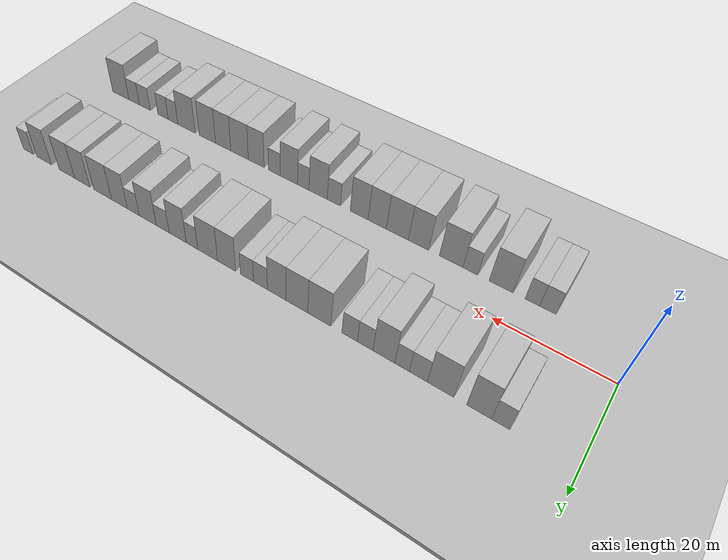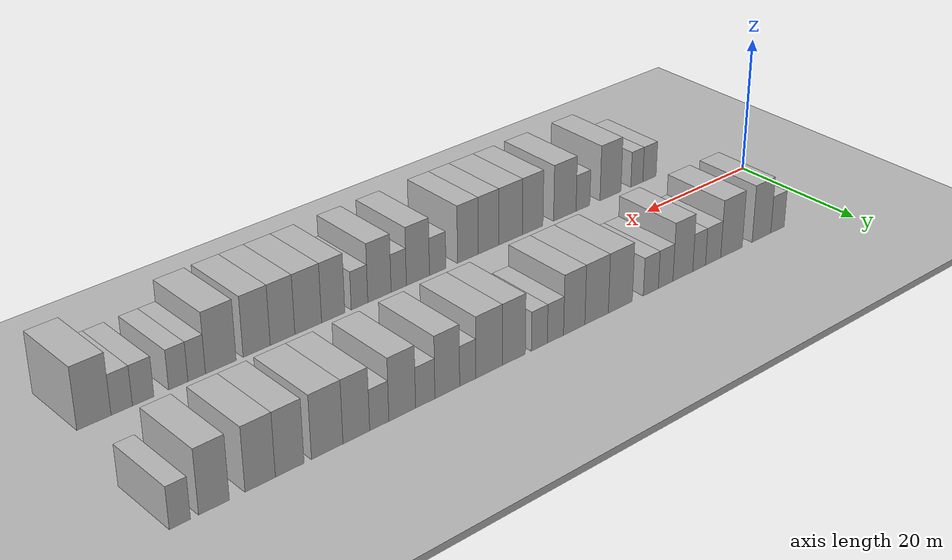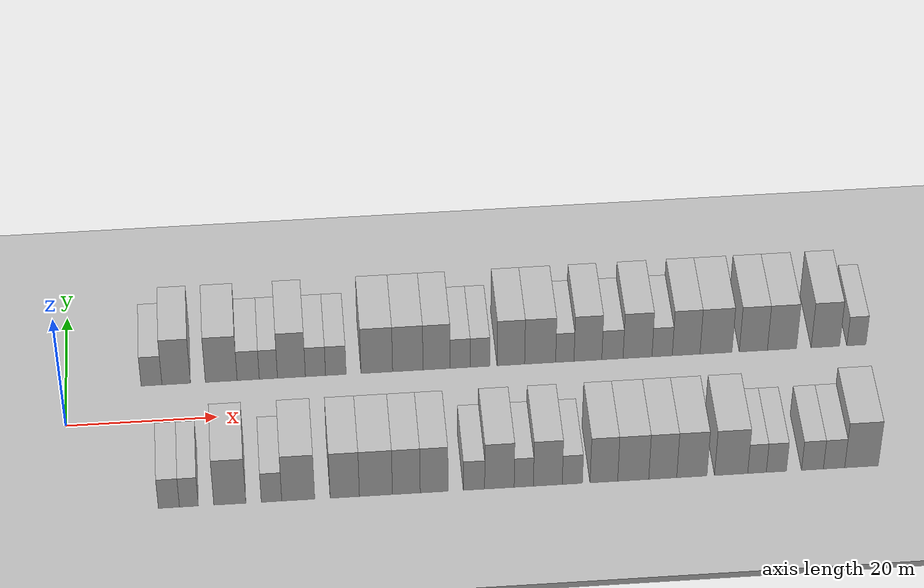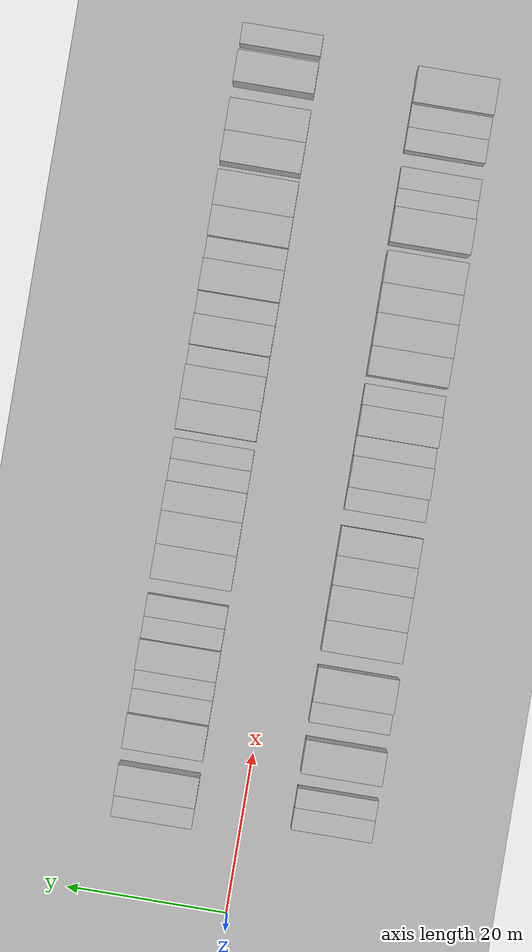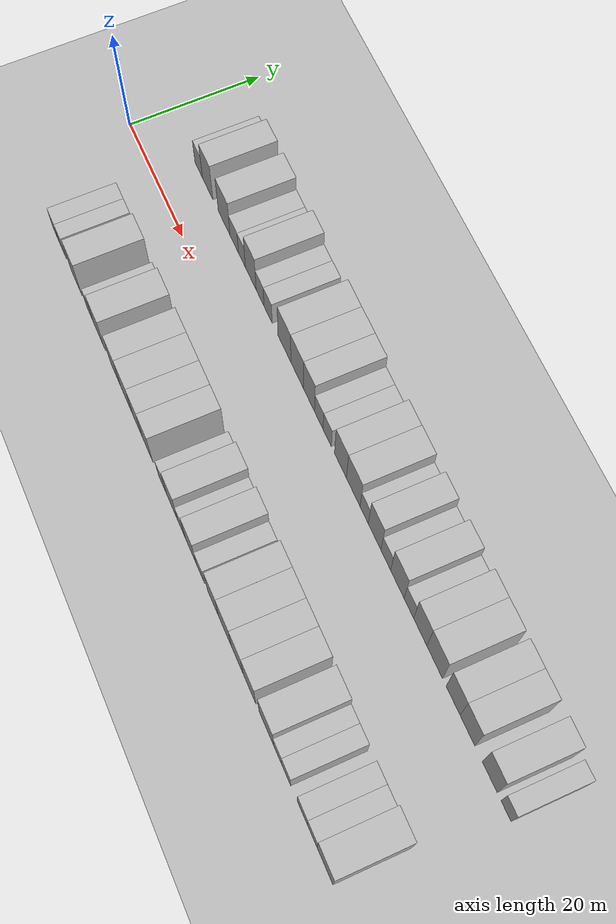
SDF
<sdf version="1.6">
 <world name="default">
  <include><name>ground_plane_1</name><uri>model://HANNAS_ground_plane</uri></include>
  <include>
   <name>ground_plane_2</name>
   <uri>model://HANNAS_ground_plane</uri>
   <pose>100 0 0  0 0 0</pose>
  </include>
  <model name="building_1">
   <static>1</static>
   <pose>11.3954 11.0000 0 0.000000 0.000000 1.570796</pose>
   <link name="link">
    <pose>0 0 3.00 0 0 0</pose>
    <collision name="collision"><geometry><box><size>10.0000 2.7908 6.0000</size></box></geometry></collision>
    <visual name="visual">
     <cast_shadows>0</cast_shadows>
     <geometry><box><size>10.0000 2.7908 6.0000</size></box></geometry>
     <material>
      <script>
       <uri>model://HANNAS_wall/materials/scripts</uri>
       <uri>model://HANNAS_wall/materials/textures</uri>
       <name>vrc/HANNAS_wall</name>
      </script>
     </material>
    </visual>
   </link>
  </model>
  <model name="building_2">
   <static>1</static>
   <pose>14.7017 11.0000 0 0.000000 0.000000 1.570796</pose>
   <link name="link">
    <pose>0 0 4.50 0 0 0</pose>
    <collision name="collision"><geometry><box><size>10.0000 3.8218 9.0000</size></box></geometry></collision>
    <visual name="visual">
     <cast_shadows>0</cast_shadows>
     <geometry><box><size>10.0000 3.8218 9.0000</size></box></geometry>
     <material>
      <script>
       <uri>model://HANNAS_wall/materials/scripts</uri>
       <uri>model://HANNAS_wall/materials/textures</uri>
       <name>vrc/HANNAS_wall</name>
      </script>
     </material>
    </visual>
   </link>
  </model>
  <model name="building_3">
   <static>1</static>
   <pose>20.7466 11.0000 0 0.000000 0.000000 1.570796</pose>
   <link name="link">
    <pose>0 0 4.50 0 0 0</pose>
    <collision name="collision"><geometry><box><size>10.0000 4.2680 9.0000</size></box></geometry></collision>
    <visual name="visual">
     <cast_shadows>0</cast_shadows>
     <geometry><box><size>10.0000 4.2680 9.0000</size></box></geometry>
     <material>
      <script>
       <uri>model://HANNAS_wall/materials/scripts</uri>
       <uri>model://HANNAS_wall/materials/textures</uri>
       <name>vrc/HANNAS_wall</name>
      </script>
     </material>
    </visual>
   </link>
  </model>
  <model name="building_4">
   <static>1</static>
   <pose>24.3679 11.0000 0 0.000000 0.000000 1.570796</pose>
   <link name="link">
    <pose>0 0 3.00 0 0 0</pose>
    <collision name="collision"><geometry><box><size>10.0000 2.9745 6.0000</size></box></geometry></collision>
    <visual name="visual">
     <cast_shadows>0</cast_shadows>
     <geometry><box><size>10.0000 2.9745 6.0000</size></box></geometry>
     <material>
      <script>
       <uri>model://HANNAS_wall/materials/scripts</uri>
       <uri>model://HANNAS_wall/materials/textures</uri>
       <name>vrc/HANNAS_wall</name>
      </script>
     </material>
    </visual>
   </link>
  </model>
  <model name="building_5">
   <static>1</static>
   <pose>27.0779 11.0000 0 0.000000 0.000000 1.570796</pose>
   <link name="link">
    <pose>0 0 3.00 0 0 0</pose>
    <collision name="collision"><geometry><box><size>10.0000 2.4456 6.0000</size></box></geometry></collision>
    <visual name="visual">
     <cast_shadows>0</cast_shadows>
     <geometry><box><size>10.0000 2.4456 6.0000</size></box></geometry>
     <material>
      <script>
       <uri>model://HANNAS_wall/materials/scripts</uri>
       <uri>model://HANNAS_wall/materials/textures</uri>
       <name>vrc/HANNAS_wall</name>
      </script>
     </material>
    </visual>
   </link>
  </model>
  <model name="building_6">
   <static>1</static>
   <pose>30.1796 11.0000 0 0.000000 0.000000 1.570796</pose>
   <link name="link">
    <pose>0 0 4.50 0 0 0</pose>
    <collision name="collision"><geometry><box><size>10.0000 3.7578 9.0000</size></box></geometry></collision>
    <visual name="visual">
     <cast_shadows>0</cast_shadows>
     <geometry><box><size>10.0000 3.7578 9.0000</size></box></geometry>
     <material>
      <script>
       <uri>model://HANNAS_wall/materials/scripts</uri>
       <uri>model://HANNAS_wall/materials/textures</uri>
       <name>vrc/HANNAS_wall</name>
      </script>
     </material>
    </visual>
   </link>
  </model>
  <model name="building_7">
   <static>1</static>
   <pose>33.4153 11.0000 0 0.000000 0.000000 1.570796</pose>
   <link name="link">
    <pose>0 0 3.00 0 0 0</pose>
    <collision name="collision"><geometry><box><size>10.0000 2.7137 6.0000</size></box></geometry></collision>
    <visual name="visual">
     <cast_shadows>0</cast_shadows>
     <geometry><box><size>10.0000 2.7137 6.0000</size></box></geometry>
     <material>
      <script>
       <uri>model://HANNAS_wall/materials/scripts</uri>
       <uri>model://HANNAS_wall/materials/textures</uri>
       <name>vrc/HANNAS_wall</name>
      </script>
     </material>
    </visual>
   </link>
  </model>
  <model name="building_8">
   <static>1</static>
   <pose>36.1574 11.0000 0 0.000000 0.000000 1.570796</pose>
   <link name="link">
    <pose>0 0 3.00 0 0 0</pose>
    <collision name="collision"><geometry><box><size>10.0000 2.7704 6.0000</size></box></geometry></collision>
    <visual name="visual">
     <cast_shadows>0</cast_shadows>
     <geometry><box><size>10.0000 2.7704 6.0000</size></box></geometry>
     <material>
      <script>
       <uri>model://HANNAS_wall/materials/scripts</uri>
       <uri>model://HANNAS_wall/materials/textures</uri>
       <name>vrc/HANNAS_wall</name>
      </script>
     </material>
    </visual>
   </link>
  </model>
  <model name="building_9">
   <static>1</static>
   <pose>41.6793 11.0000 0 0.000000 0.000000 1.570796</pose>
   <link name="link">
    <pose>0 0 4.50 0 0 0</pose>
    <collision name="collision"><geometry><box><size>10.0000 4.2735 9.0000</size></box></geometry></collision>
    <visual name="visual">
     <cast_shadows>0</cast_shadows>
     <geometry><box><size>10.0000 4.2735 9.0000</size></box></geometry>
     <material>
      <script>
       <uri>model://HANNAS_wall/materials/scripts</uri>
       <uri>model://HANNAS_wall/materials/textures</uri>
       <name>vrc/HANNAS_wall</name>
      </script>
     </material>
    </visual>
   </link>
  </model>
  <model name="building_10">
   <static>1</static>
   <pose>45.8695 11.0000 0 0.000000 0.000000 1.570796</pose>
   <link name="link">
    <pose>0 0 4.50 0 0 0</pose>
    <collision name="collision"><geometry><box><size>10.0000 4.1068 9.0000</size></box></geometry></collision>
    <visual name="visual">
     <cast_shadows>0</cast_shadows>
     <geometry><box><size>10.0000 4.1068 9.0000</size></box></geometry>
     <material>
      <script>
       <uri>model://HANNAS_wall/materials/scripts</uri>
       <uri>model://HANNAS_wall/materials/textures</uri>
       <name>vrc/HANNAS_wall</name>
      </script>
     </material>
    </visual>
   </link>
  </model>
  <model name="building_11">
   <static>1</static>
   <pose>49.7489 11.0000 0 0.000000 0.000000 1.570796</pose>
   <link name="link">
    <pose>0 0 4.50 0 0 0</pose>
    <collision name="collision"><geometry><box><size>10.0000 3.6519 9.0000</size></box></geometry></collision>
    <visual name="visual">
     <cast_shadows>0</cast_shadows>
     <geometry><box><size>10.0000 3.6519 9.0000</size></box></geometry>
     <material>
      <script>
       <uri>model://HANNAS_wall/materials/scripts</uri>
       <uri>model://HANNAS_wall/materials/textures</uri>
       <name>vrc/HANNAS_wall</name>
      </script>
     </material>
    </visual>
   </link>
  </model>
  <model name="building_12">
   <static>1</static>
   <pose>52.9385 11.0000 0 0.000000 0.000000 1.570796</pose>
   <link name="link">
    <pose>0 0 3.00 0 0 0</pose>
    <collision name="collision"><geometry><box><size>10.0000 2.7273 6.0000</size></box></geometry></collision>
    <visual name="visual">
     <cast_shadows>0</cast_shadows>
     <geometry><box><size>10.0000 2.7273 6.0000</size></box></geometry>
     <material>
      <script>
       <uri>model://HANNAS_wall/materials/scripts</uri>
       <uri>model://HANNAS_wall/materials/textures</uri>
       <name>vrc/HANNAS_wall</name>
      </script>
     </material>
    </visual>
   </link>
  </model>
  <model name="building_13">
   <static>1</static>
   <pose>55.6224 11.0000 0 0.000000 0.000000 1.570796</pose>
   <link name="link">
    <pose>0 0 3.00 0 0 0</pose>
    <collision name="collision"><geometry><box><size>10.0000 2.6405 6.0000</size></box></geometry></collision>
    <visual name="visual">
     <cast_shadows>0</cast_shadows>
     <geometry><box><size>10.0000 2.6405 6.0000</size></box></geometry>
     <material>
      <script>
       <uri>model://HANNAS_wall/materials/scripts</uri>
       <uri>model://HANNAS_wall/materials/textures</uri>
       <name>vrc/HANNAS_wall</name>
      </script>
     </material>
    </visual>
   </link>
  </model>
  <model name="building_14">
   <static>1</static>
   <pose>59.8101 11.0000 0 0.000000 0.000000 1.570796</pose>
   <link name="link">
    <pose>0 0 4.50 0 0 0</pose>
    <collision name="collision"><geometry><box><size>10.0000 3.7348 9.0000</size></box></geometry></collision>
    <visual name="visual">
     <cast_shadows>0</cast_shadows>
     <geometry><box><size>10.0000 3.7348 9.0000</size></box></geometry>
     <material>
      <script>
       <uri>model://HANNAS_wall/materials/scripts</uri>
       <uri>model://HANNAS_wall/materials/textures</uri>
       <name>vrc/HANNAS_wall</name>
      </script>
     </material>
    </visual>
   </link>
  </model>
  <model name="building_15">
   <static>1</static>
   <pose>63.7814 11.0000 0 0.000000 0.000000 1.570796</pose>
   <link name="link">
    <pose>0 0 4.50 0 0 0</pose>
    <collision name="collision"><geometry><box><size>10.0000 4.2078 9.0000</size></box></geometry></collision>
    <visual name="visual">
     <cast_shadows>0</cast_shadows>
     <geometry><box><size>10.0000 4.2078 9.0000</size></box></geometry>
     <material>
      <script>
       <uri>model://HANNAS_wall/materials/scripts</uri>
       <uri>model://HANNAS_wall/materials/textures</uri>
       <name>vrc/HANNAS_wall</name>
      </script>
     </material>
    </visual>
   </link>
  </model>
  <model name="building_16">
   <static>1</static>
   <pose>67.1311 11.0000 0 0.000000 0.000000 1.570796</pose>
   <link name="link">
    <pose>0 0 3.00 0 0 0</pose>
    <collision name="collision"><geometry><box><size>10.0000 2.4916 6.0000</size></box></geometry></collision>
    <visual name="visual">
     <cast_shadows>0</cast_shadows>
     <geometry><box><size>10.0000 2.4916 6.0000</size></box></geometry>
     <material>
      <script>
       <uri>model://HANNAS_wall/materials/scripts</uri>
       <uri>model://HANNAS_wall/materials/textures</uri>
       <name>vrc/HANNAS_wall</name>
      </script>
     </material>
    </visual>
   </link>
  </model>
  <model name="building_17">
   <static>1</static>
   <pose>70.2691 11.0000 0 0.000000 0.000000 1.570796</pose>
   <link name="link">
    <pose>0 0 4.50 0 0 0</pose>
    <collision name="collision"><geometry><box><size>10.0000 3.7843 9.0000</size></box></geometry></collision>
    <visual name="visual">
     <cast_shadows>0</cast_shadows>
     <geometry><box><size>10.0000 3.7843 9.0000</size></box></geometry>
     <material>
      <script>
       <uri>model://HANNAS_wall/materials/scripts</uri>
       <uri>model://HANNAS_wall/materials/textures</uri>
       <name>vrc/HANNAS_wall</name>
      </script>
     </material>
    </visual>
   </link>
  </model>
  <model name="building_18">
   <static>1</static>
   <pose>73.6063 11.0000 0 0.000000 0.000000 1.570796</pose>
   <link name="link">
    <pose>0 0 3.00 0 0 0</pose>
    <collision name="collision"><geometry><box><size>10.0000 2.8903 6.0000</size></box></geometry></collision>
    <visual name="visual">
     <cast_shadows>0</cast_shadows>
     <geometry><box><size>10.0000 2.8903 6.0000</size></box></geometry>
     <material>
      <script>
       <uri>model://HANNAS_wall/materials/scripts</uri>
       <uri>model://HANNAS_wall/materials/textures</uri>
       <name>vrc/HANNAS_wall</name>
      </script>
     </material>
    </visual>
   </link>
  </model>
  <model name="building_19">
   <static>1</static>
   <pose>77.0199 11.0000 0 0.000000 0.000000 1.570796</pose>
   <link name="link">
    <pose>0 0 4.50 0 0 0</pose>
    <collision name="collision"><geometry><box><size>10.0000 3.9369 9.0000</size></box></geometry></collision>
    <visual name="visual">
     <cast_shadows>0</cast_shadows>
     <geometry><box><size>10.0000 3.9369 9.0000</size></box></geometry>
     <material>
      <script>
       <uri>model://HANNAS_wall/materials/scripts</uri>
       <uri>model://HANNAS_wall/materials/textures</uri>
       <name>vrc/HANNAS_wall</name>
      </script>
     </material>
    </visual>
   </link>
  </model>
  <model name="building_20">
   <static>1</static>
   <pose>80.3726 11.0000 0 0.000000 0.000000 1.570796</pose>
   <link name="link">
    <pose>0 0 3.00 0 0 0</pose>
    <collision name="collision"><geometry><box><size>10.0000 2.7685 6.0000</size></box></geometry></collision>
    <visual name="visual">
     <cast_shadows>0</cast_shadows>
     <geometry><box><size>10.0000 2.7685 6.0000</size></box></geometry>
     <material>
      <script>
       <uri>model://HANNAS_wall/materials/scripts</uri>
       <uri>model://HANNAS_wall/materials/textures</uri>
       <name>vrc/HANNAS_wall</name>
      </script>
     </material>
    </visual>
   </link>
  </model>
  <model name="building_21">
   <static>1</static>
   <pose>83.6464 11.0000 0 0.000000 0.000000 1.570796</pose>
   <link name="link">
    <pose>0 0 4.50 0 0 0</pose>
    <collision name="collision"><geometry><box><size>10.0000 3.7791 9.0000</size></box></geometry></collision>
    <visual name="visual">
     <cast_shadows>0</cast_shadows>
     <geometry><box><size>10.0000 3.7791 9.0000</size></box></geometry>
     <material>
      <script>
       <uri>model://HANNAS_wall/materials/scripts</uri>
       <uri>model://HANNAS_wall/materials/textures</uri>
       <name>vrc/HANNAS_wall</name>
      </script>
     </material>
    </visual>
   </link>
  </model>
  <model name="building_22">
   <static>1</static>
   <pose>87.7189 11.0000 0 0.000000 0.000000 1.570796</pose>
   <link name="link">
    <pose>0 0 4.50 0 0 0</pose>
    <collision name="collision"><geometry><box><size>10.0000 4.3659 9.0000</size></box></geometry></collision>
    <visual name="visual">
     <cast_shadows>0</cast_shadows>
     <geometry><box><size>10.0000 4.3659 9.0000</size></box></geometry>
     <material>
      <script>
       <uri>model://HANNAS_wall/materials/scripts</uri>
       <uri>model://HANNAS_wall/materials/textures</uri>
       <name>vrc/HANNAS_wall</name>
      </script>
     </material>
    </visual>
   </link>
  </model>
  <model name="building_23">
   <static>1</static>
   <pose>92.8211 11.0000 0 0.000000 0.000000 1.570796</pose>
   <link name="link">
    <pose>0 0 4.50 0 0 0</pose>
    <collision name="collision"><geometry><box><size>10.0000 3.8386 9.0000</size></box></geometry></collision>
    <visual name="visual">
     <cast_shadows>0</cast_shadows>
     <geometry><box><size>10.0000 3.8386 9.0000</size></box></geometry>
     <material>
      <script>
       <uri>model://HANNAS_wall/materials/scripts</uri>
       <uri>model://HANNAS_wall/materials/textures</uri>
       <name>vrc/HANNAS_wall</name>
      </script>
     </material>
    </visual>
   </link>
  </model>
  <model name="building_24">
   <static>1</static>
   <pose>96.7313 11.0000 0 0.000000 0.000000 1.570796</pose>
   <link name="link">
    <pose>0 0 4.50 0 0 0</pose>
    <collision name="collision"><geometry><box><size>10.0000 3.9817 9.0000</size></box></geometry></collision>
    <visual name="visual">
     <cast_shadows>0</cast_shadows>
     <geometry><box><size>10.0000 3.9817 9.0000</size></box></geometry>
     <material>
      <script>
       <uri>model://HANNAS_wall/materials/scripts</uri>
       <uri>model://HANNAS_wall/materials/textures</uri>
       <name>vrc/HANNAS_wall</name>
      </script>
     </material>
    </visual>
   </link>
  </model>
  <model name="building_25">
   <static>1</static>
   <pose>102.6719 11.0000 0 0.000000 0.000000 1.570796</pose>
   <link name="link">
    <pose>0 0 4.50 0 0 0</pose>
    <collision name="collision"><geometry><box><size>10.0000 3.8996 9.0000</size></box></geometry></collision>
    <visual name="visual">
     <cast_shadows>0</cast_shadows>
     <geometry><box><size>10.0000 3.8996 9.0000</size></box></geometry>
     <material>
      <script>
       <uri>model://HANNAS_wall/materials/scripts</uri>
       <uri>model://HANNAS_wall/materials/textures</uri>
       <name>vrc/HANNAS_wall</name>
      </script>
     </material>
    </visual>
   </link>
  </model>
  <model name="building_26">
   <static>1</static>
   <pose>106.9295 11.0000 0 0.000000 0.000000 1.570796</pose>
   <link name="link">
    <pose>0 0 3.00 0 0 0</pose>
    <collision name="collision"><geometry><box><size>10.0000 2.6156 6.0000</size></box></geometry></collision>
    <visual name="visual">
     <cast_shadows>0</cast_shadows>
     <geometry><box><size>10.0000 2.6156 6.0000</size></box></geometry>
     <material>
      <script>
       <uri>model://HANNAS_wall/materials/scripts</uri>
       <uri>model://HANNAS_wall/materials/textures</uri>
       <name>vrc/HANNAS_wall</name>
      </script>
     </material>
    </visual>
   </link>
  </model>
  <model name="building_54">
   <static>1</static>
   <pose>13.3625 -11.0000 0 0.000000 0.000000 1.570796</pose>
   <link name="link">
    <pose>0 0 3.00 0 0 0</pose>
    <collision name="collision"><geometry><box><size>10.0000 2.7249 6.0000</size></box></geometry></collision>
    <visual name="visual">
     <cast_shadows>0</cast_shadows>
     <geometry><box><size>10.0000 2.7249 6.0000</size></box></geometry>
     <material>
      <script>
       <uri>model://HANNAS_wall/materials/scripts</uri>
       <uri>model://HANNAS_wall/materials/textures</uri>
       <name>vrc/HANNAS_wall</name>
      </script>
     </material>
    </visual>
   </link>
  </model>
  <model name="building_55">
   <static>1</static>
   <pose>15.9511 -11.0000 0 0.000000 0.000000 1.570796</pose>
   <link name="link">
    <pose>0 0 3.00 0 0 0</pose>
    <collision name="collision"><geometry><box><size>10.0000 2.4523 6.0000</size></box></geometry></collision>
    <visual name="visual">
     <cast_shadows>0</cast_shadows>
     <geometry><box><size>10.0000 2.4523 6.0000</size></box></geometry>
     <material>
      <script>
       <uri>model://HANNAS_wall/materials/scripts</uri>
       <uri>model://HANNAS_wall/materials/textures</uri>
       <name>vrc/HANNAS_wall</name>
      </script>
     </material>
    </visual>
   </link>
  </model>
  <model name="building_56">
   <static>1</static>
   <pose>21.2565 -11.0000 0 0.000000 0.000000 1.570796</pose>
   <link name="link">
    <pose>0 0 4.50 0 0 0</pose>
    <collision name="collision"><geometry><box><size>10.0000 4.1585 9.0000</size></box></geometry></collision>
    <visual name="visual">
     <cast_shadows>0</cast_shadows>
     <geometry><box><size>10.0000 4.1585 9.0000</size></box></geometry>
     <material>
      <script>
       <uri>model://HANNAS_wall/materials/scripts</uri>
       <uri>model://HANNAS_wall/materials/textures</uri>
       <name>vrc/HANNAS_wall</name>
      </script>
     </material>
    </visual>
   </link>
  </model>
  <model name="building_57">
   <static>1</static>
   <pose>26.6643 -11.0000 0 0.000000 0.000000 1.570796</pose>
   <link name="link">
    <pose>0 0 3.00 0 0 0</pose>
    <collision name="collision"><geometry><box><size>10.0000 2.6572 6.0000</size></box></geometry></collision>
    <visual name="visual">
     <cast_shadows>0</cast_shadows>
     <geometry><box><size>10.0000 2.6572 6.0000</size></box></geometry>
     <material>
      <script>
       <uri>model://HANNAS_wall/materials/scripts</uri>
       <uri>model://HANNAS_wall/materials/textures</uri>
       <name>vrc/HANNAS_wall</name>
      </script>
     </material>
    </visual>
   </link>
  </model>
  <model name="building_58">
   <static>1</static>
   <pose>30.1339 -11.0000 0 0.000000 0.000000 1.570796</pose>
   <link name="link">
    <pose>0 0 4.50 0 0 0</pose>
    <collision name="collision"><geometry><box><size>10.0000 4.2821 9.0000</size></box></geometry></collision>
    <visual name="visual">
     <cast_shadows>0</cast_shadows>
     <geometry><box><size>10.0000 4.2821 9.0000</size></box></geometry>
     <material>
      <script>
       <uri>model://HANNAS_wall/materials/scripts</uri>
       <uri>model://HANNAS_wall/materials/textures</uri>
       <name>vrc/HANNAS_wall</name>
      </script>
     </material>
    </visual>
   </link>
  </model>
  <model name="building_59">
   <static>1</static>
   <pose>36.1808 -11.0000 0 0.000000 0.000000 1.570796</pose>
   <link name="link">
    <pose>0 0 4.50 0 0 0</pose>
    <collision name="collision"><geometry><box><size>10.0000 3.8116 9.0000</size></box></geometry></collision>
    <visual name="visual">
     <cast_shadows>0</cast_shadows>
     <geometry><box><size>10.0000 3.8116 9.0000</size></box></geometry>
     <material>
      <script>
       <uri>model://HANNAS_wall/materials/scripts</uri>
       <uri>model://HANNAS_wall/materials/textures</uri>
       <name>vrc/HANNAS_wall</name>
      </script>
     </material>
    </visual>
   </link>
  </model>
  <model name="building_60">
   <static>1</static>
   <pose>40.2387 -11.0000 0 0.000000 0.000000 1.570796</pose>
   <link name="link">
    <pose>0 0 4.50 0 0 0</pose>
    <collision name="collision"><geometry><box><size>10.0000 4.3042 9.0000</size></box></geometry></collision>
    <visual name="visual">
     <cast_shadows>0</cast_shadows>
     <geometry><box><size>10.0000 4.3042 9.0000</size></box></geometry>
     <material>
      <script>
       <uri>model://HANNAS_wall/materials/scripts</uri>
       <uri>model://HANNAS_wall/materials/textures</uri>
       <name>vrc/HANNAS_wall</name>
      </script>
     </material>
    </visual>
   </link>
  </model>
  <model name="building_61">
   <static>1</static>
   <pose>44.2039 -11.0000 0 0.000000 0.000000 1.570796</pose>
   <link name="link">
    <pose>0 0 4.50 0 0 0</pose>
    <collision name="collision"><geometry><box><size>10.0000 3.6262 9.0000</size></box></geometry></collision>
    <visual name="visual">
     <cast_shadows>0</cast_shadows>
     <geometry><box><size>10.0000 3.6262 9.0000</size></box></geometry>
     <material>
      <script>
       <uri>model://HANNAS_wall/materials/scripts</uri>
       <uri>model://HANNAS_wall/materials/textures</uri>
       <name>vrc/HANNAS_wall</name>
      </script>
     </material>
    </visual>
   </link>
  </model>
  <model name="building_62">
   <static>1</static>
   <pose>47.8287 -11.0000 0 0.000000 0.000000 1.570796</pose>
   <link name="link">
    <pose>0 0 4.50 0 0 0</pose>
    <collision name="collision"><geometry><box><size>10.0000 3.6234 9.0000</size></box></geometry></collision>
    <visual name="visual">
     <cast_shadows>0</cast_shadows>
     <geometry><box><size>10.0000 3.6234 9.0000</size></box></geometry>
     <material>
      <script>
       <uri>model://HANNAS_wall/materials/scripts</uri>
       <uri>model://HANNAS_wall/materials/textures</uri>
       <name>vrc/HANNAS_wall</name>
      </script>
     </material>
    </visual>
   </link>
  </model>
  <model name="building_63">
   <static>1</static>
   <pose>53.0325 -11.0000 0 0.000000 0.000000 1.570796</pose>
   <link name="link">
    <pose>0 0 3.00 0 0 0</pose>
    <collision name="collision"><geometry><box><size>10.0000 2.7842 6.0000</size></box></geometry></collision>
    <visual name="visual">
     <cast_shadows>0</cast_shadows>
     <geometry><box><size>10.0000 2.7842 6.0000</size></box></geometry>
     <material>
      <script>
       <uri>model://HANNAS_wall/materials/scripts</uri>
       <uri>model://HANNAS_wall/materials/textures</uri>
       <name>vrc/HANNAS_wall</name>
      </script>
     </material>
    </visual>
   </link>
  </model>
  <model name="building_64">
   <static>1</static>
   <pose>56.3552 -11.0000 0 0.000000 0.000000 1.570796</pose>
   <link name="link">
    <pose>0 0 4.50 0 0 0</pose>
    <collision name="collision"><geometry><box><size>10.0000 3.8612 9.0000</size></box></geometry></collision>
    <visual name="visual">
     <cast_shadows>0</cast_shadows>
     <geometry><box><size>10.0000 3.8612 9.0000</size></box></geometry>
     <material>
      <script>
       <uri>model://HANNAS_wall/materials/scripts</uri>
       <uri>model://HANNAS_wall/materials/textures</uri>
       <name>vrc/HANNAS_wall</name>
      </script>
     </material>
    </visual>
   </link>
  </model>
  <model name="building_65">
   <static>1</static>
   <pose>59.5415 -11.0000 0 0.000000 0.000000 1.570796</pose>
   <link name="link">
    <pose>0 0 3.00 0 0 0</pose>
    <collision name="collision"><geometry><box><size>10.0000 2.5115 6.0000</size></box></geometry></collision>
    <visual name="visual">
     <cast_shadows>0</cast_shadows>
     <geometry><box><size>10.0000 2.5115 6.0000</size></box></geometry>
     <material>
      <script>
       <uri>model://HANNAS_wall/materials/scripts</uri>
       <uri>model://HANNAS_wall/materials/textures</uri>
       <name>vrc/HANNAS_wall</name>
      </script>
     </material>
    </visual>
   </link>
  </model>
  <model name="building_66">
   <static>1</static>
   <pose>62.6873 -11.0000 0 0.000000 0.000000 1.570796</pose>
   <link name="link">
    <pose>0 0 4.50 0 0 0</pose>
    <collision name="collision"><geometry><box><size>10.0000 3.7800 9.0000</size></box></geometry></collision>
    <visual name="visual">
     <cast_shadows>0</cast_shadows>
     <geometry><box><size>10.0000 3.7800 9.0000</size></box></geometry>
     <material>
      <script>
       <uri>model://HANNAS_wall/materials/scripts</uri>
       <uri>model://HANNAS_wall/materials/textures</uri>
       <name>vrc/HANNAS_wall</name>
      </script>
     </material>
    </visual>
   </link>
  </model>
  <model name="building_67">
   <static>1</static>
   <pose>65.9025 -11.0000 0 0.000000 0.000000 1.570796</pose>
   <link name="link">
    <pose>0 0 3.00 0 0 0</pose>
    <collision name="collision"><geometry><box><size>10.0000 2.6505 6.0000</size></box></geometry></collision>
    <visual name="visual">
     <cast_shadows>0</cast_shadows>
     <geometry><box><size>10.0000 2.6505 6.0000</size></box></geometry>
     <material>
      <script>
       <uri>model://HANNAS_wall/materials/scripts</uri>
       <uri>model://HANNAS_wall/materials/textures</uri>
       <name>vrc/HANNAS_wall</name>
      </script>
     </material>
    </visual>
   </link>
  </model>
  <model name="building_68">
   <static>1</static>
   <pose>70.0412 -11.0000 0 0.000000 0.000000 1.570796</pose>
   <link name="link">
    <pose>0 0 4.50 0 0 0</pose>
    <collision name="collision"><geometry><box><size>10.0000 3.6270 9.0000</size></box></geometry></collision>
    <visual name="visual">
     <cast_shadows>0</cast_shadows>
     <geometry><box><size>10.0000 3.6270 9.0000</size></box></geometry>
     <material>
      <script>
       <uri>model://HANNAS_wall/materials/scripts</uri>
       <uri>model://HANNAS_wall/materials/textures</uri>
       <name>vrc/HANNAS_wall</name>
      </script>
     </material>
    </visual>
   </link>
  </model>
  <model name="building_69">
   <static>1</static>
   <pose>73.8972 -11.0000 0 0.000000 0.000000 1.570796</pose>
   <link name="link">
    <pose>0 0 4.50 0 0 0</pose>
    <collision name="collision"><geometry><box><size>10.0000 4.0849 9.0000</size></box></geometry></collision>
    <visual name="visual">
     <cast_shadows>0</cast_shadows>
     <geometry><box><size>10.0000 4.0849 9.0000</size></box></geometry>
     <material>
      <script>
       <uri>model://HANNAS_wall/materials/scripts</uri>
       <uri>model://HANNAS_wall/materials/textures</uri>
       <name>vrc/HANNAS_wall</name>
      </script>
     </material>
    </visual>
   </link>
  </model>
  <model name="building_70">
   <static>1</static>
   <pose>77.7819 -11.0000 0 0.000000 0.000000 1.570796</pose>
   <link name="link">
    <pose>0 0 4.50 0 0 0</pose>
    <collision name="collision"><geometry><box><size>10.0000 3.6844 9.0000</size></box></geometry></collision>
    <visual name="visual">
     <cast_shadows>0</cast_shadows>
     <geometry><box><size>10.0000 3.6844 9.0000</size></box></geometry>
     <material>
      <script>
       <uri>model://HANNAS_wall/materials/scripts</uri>
       <uri>model://HANNAS_wall/materials/textures</uri>
       <name>vrc/HANNAS_wall</name>
      </script>
     </material>
    </visual>
   </link>
  </model>
  <model name="building_71">
   <static>1</static>
   <pose>81.6111 -11.0000 0 0.000000 0.000000 1.570796</pose>
   <link name="link">
    <pose>0 0 4.50 0 0 0</pose>
    <collision name="collision"><geometry><box><size>10.0000 3.9740 9.0000</size></box></geometry></collision>
    <visual name="visual">
     <cast_shadows>0</cast_shadows>
     <geometry><box><size>10.0000 3.9740 9.0000</size></box></geometry>
     <material>
      <script>
       <uri>model://HANNAS_wall/materials/scripts</uri>
       <uri>model://HANNAS_wall/materials/textures</uri>
       <name>vrc/HANNAS_wall</name>
      </script>
     </material>
    </visual>
   </link>
  </model>
  <model name="building_72">
   <static>1</static>
   <pose>86.7866 -11.0000 0 0.000000 0.000000 1.570796</pose>
   <link name="link">
    <pose>0 0 4.50 0 0 0</pose>
    <collision name="collision"><geometry><box><size>10.0000 4.3771 9.0000</size></box></geometry></collision>
    <visual name="visual">
     <cast_shadows>0</cast_shadows>
     <geometry><box><size>10.0000 4.3771 9.0000</size></box></geometry>
     <material>
      <script>
       <uri>model://HANNAS_wall/materials/scripts</uri>
       <uri>model://HANNAS_wall/materials/textures</uri>
       <name>vrc/HANNAS_wall</name>
      </script>
     </material>
    </visual>
   </link>
  </model>
  <model name="building_73">
   <static>1</static>
   <pose>90.2023 -11.0000 0 0.000000 0.000000 1.570796</pose>
   <link name="link">
    <pose>0 0 3.00 0 0 0</pose>
    <collision name="collision"><geometry><box><size>10.0000 2.4543 6.0000</size></box></geometry></collision>
    <visual name="visual">
     <cast_shadows>0</cast_shadows>
     <geometry><box><size>10.0000 2.4543 6.0000</size></box></geometry>
     <material>
      <script>
       <uri>model://HANNAS_wall/materials/scripts</uri>
       <uri>model://HANNAS_wall/materials/textures</uri>
       <name>vrc/HANNAS_wall</name>
      </script>
     </material>
    </visual>
   </link>
  </model>
  <model name="building_74">
   <static>1</static>
   <pose>92.7566 -11.0000 0 0.000000 0.000000 1.570796</pose>
   <link name="link">
    <pose>0 0 3.00 0 0 0</pose>
    <collision name="collision"><geometry><box><size>10.0000 2.6543 6.0000</size></box></geometry></collision>
    <visual name="visual">
     <cast_shadows>0</cast_shadows>
     <geometry><box><size>10.0000 2.6543 6.0000</size></box></geometry>
     <material>
      <script>
       <uri>model://HANNAS_wall/materials/scripts</uri>
       <uri>model://HANNAS_wall/materials/textures</uri>
       <name>vrc/HANNAS_wall</name>
      </script>
     </material>
    </visual>
   </link>
  </model>
  <model name="building_75">
   <static>1</static>
   <pose>97.5259 -11.0000 0 0.000000 0.000000 1.570796</pose>
   <link name="link">
    <pose>0 0 3.00 0 0 0</pose>
    <collision name="collision"><geometry><box><size>10.0000 2.8841 6.0000</size></box></geometry></collision>
    <visual name="visual">
     <cast_shadows>0</cast_shadows>
     <geometry><box><size>10.0000 2.8841 6.0000</size></box></geometry>
     <material>
      <script>
       <uri>model://HANNAS_wall/materials/scripts</uri>
       <uri>model://HANNAS_wall/materials/textures</uri>
       <name>vrc/HANNAS_wall</name>
      </script>
     </material>
    </visual>
   </link>
  </model>
  <model name="building_76">
   <static>1</static>
   <pose>100.3768 -11.0000 0 0.000000 0.000000 1.570796</pose>
   <link name="link">
    <pose>0 0 3.00 0 0 0</pose>
    <collision name="collision"><geometry><box><size>10.0000 2.8179 6.0000</size></box></geometry></collision>
    <visual name="visual">
     <cast_shadows>0</cast_shadows>
     <geometry><box><size>10.0000 2.8179 6.0000</size></box></geometry>
     <material>
      <script>
       <uri>model://HANNAS_wall/materials/scripts</uri>
       <uri>model://HANNAS_wall/materials/textures</uri>
       <name>vrc/HANNAS_wall</name>
      </script>
     </material>
    </visual>
   </link>
  </model>
  <model name="building_77">
   <static>1</static>
   <pose>104.0072 -11.0000 0 0.000000 0.000000 1.570796</pose>
   <link name="link">
    <pose>0 0 4.50 0 0 0</pose>
    <collision name="collision"><geometry><box><size>10.0000 4.4429 9.0000</size></box></geometry></collision>
    <visual name="visual">
     <cast_shadows>0</cast_shadows>
     <geometry><box><size>10.0000 4.4429 9.0000</size></box></geometry>
     <material>
      <script>
       <uri>model://HANNAS_wall/materials/scripts</uri>
       <uri>model://HANNAS_wall/materials/textures</uri>
       <name>vrc/HANNAS_wall</name>
      </script>
     </material>
    </visual>
   </link>
  </model>
 </world>
</sdf>
